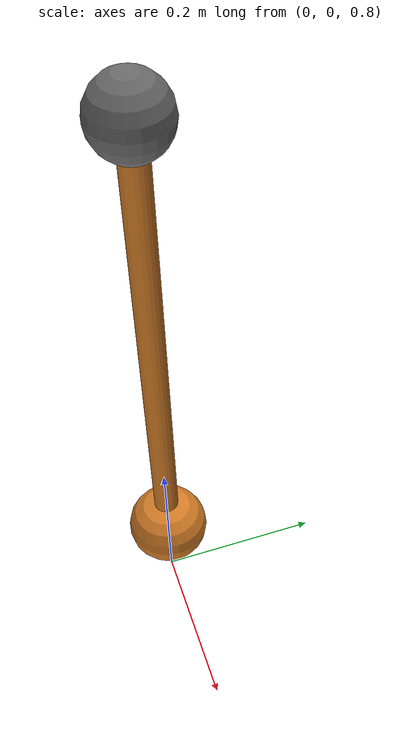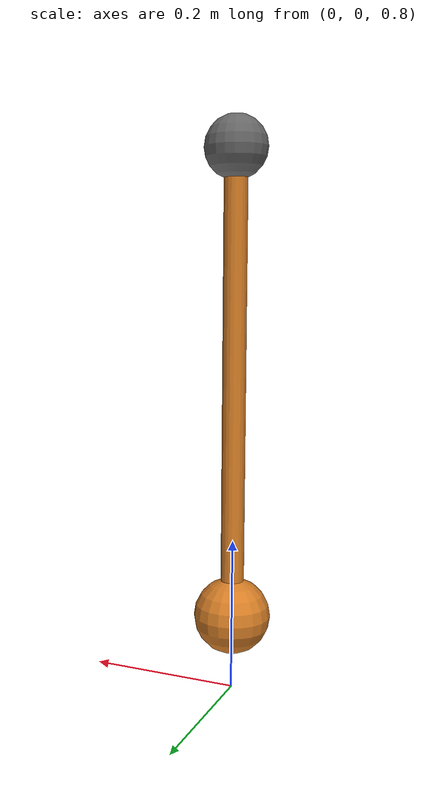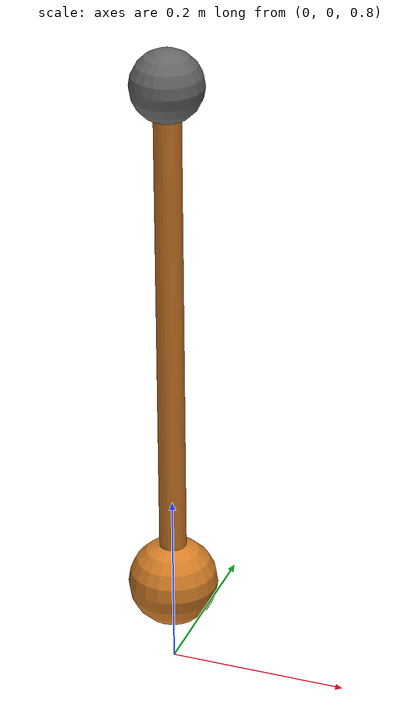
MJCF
<mujoco model="ball-cone">
  <compiler angle="degree"/>
  <option gravity="0 0 -9.81" timestep="0.002"/>

  <default>
    <geom contype="0" conaffinity="0"/>
  </default>

  <worldbody>
    <body name="pivot" pos="0 0 1.5">
      <geom name="pivot_geom" type="sphere" size="0.04" rgba="0.4 0.4 0.4 1"/>
      <body name="rod" pos="0 0 0">
        <joint name="ball" type="ball" limited="true" range="0 30"
               damping="0.08"/>
        <geom name="rod_geom" type="capsule"
              fromto="0 0 0 0 0 -0.6" size="0.015" mass="0.3"
              rgba="0.85 0.5 0.15 1"/>
        <body name="tip" pos="0 0 -0.6">
          <geom name="tip_geom" type="sphere" size="0.05" mass="1.0"
                rgba="0.85 0.5 0.15 1"/>
        </body>
      </body>
    </body>
  </worldbody>

  <sensor>
    <jointlimitfrc name="ball_lf" joint="ball"/>
  </sensor>
</mujoco>
